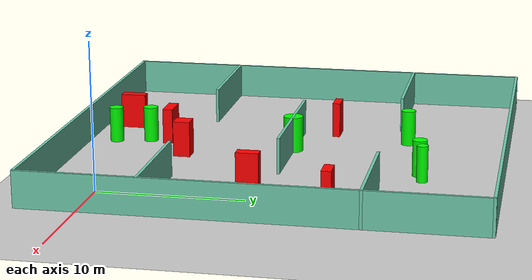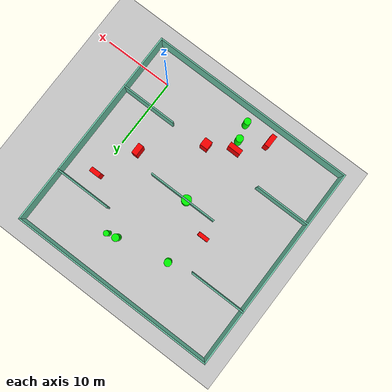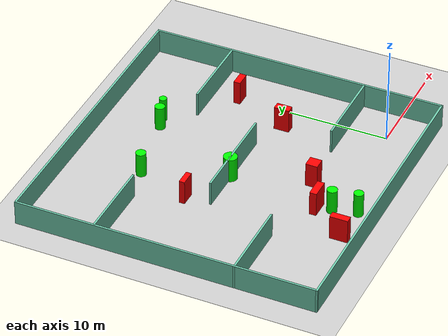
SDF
<sdf version="1.7">
 <world name="default">
  <light name="sun" type="directional">
   <pose>0 0 10 0 -0 0</pose>
   <diffuse>0.8 0.8 0.8 1</diffuse>
   <specular>0.2 0.2 0.2 1</specular>
   <attenuation>
    <range>1000</range>
    <constant>0.9</constant>
    <linear>0.01</linear>
    <quadratic>0.001</quadratic>
   </attenuation>
   <direction>-0.5 0.1 -0.9</direction>
   <spot><inner_angle>0</inner_angle><outer_angle>0</outer_angle><falloff>0</falloff></spot>
  </light>
  <model name="ground_plane">
   <static>1</static>
   <link name="link">
    <collision name="collision">
     <geometry><plane><normal>0 0 1</normal><size>100 100</size></plane></geometry>
     <surface>
      <contact><collide_bitmask>65535</collide_bitmask></contact>
      <friction><ode><mu>100</mu><mu2>50</mu2></ode></friction>
     </surface>
    </collision>
    <visual name="visual">
     <cast_shadows>0</cast_shadows>
     <geometry><plane><normal>0 0 1</normal><size>100 100</size></plane></geometry>
     <material>
      <script><uri>file://media/materials/scripts/gazebo.material</uri><name>Gazebo/Grey</name></script>
     </material>
    </visual>
   </link>
  </model>
  <gravity>0 0 -9.8</gravity>
  <magnetic_field>6e-06 2.3e-05 -4.2e-05</magnetic_field>
  <atmosphere type="adiabatic"/>
  <physics type="ode">
   <max_step_size>0.001</max_step_size>
   <real_time_factor>1</real_time_factor>
   <real_time_update_rate>1000</real_time_update_rate>
  </physics>
  <scene><ambient>0.4 0.4 0.4 1</ambient><background>0.7 0.7 0.7 1</background><shadows>1</shadows></scene>
  <spherical_coordinates>
   <surface_model>EARTH_WGS84</surface_model>
   <latitude_deg>0</latitude_deg>
   <longitude_deg>0</longitude_deg>
   <elevation>0</elevation>
   <heading_deg>0</heading_deg>
  </spherical_coordinates>
  <model name="my_base_walls">
   <link name="Wall_10">
    <collision name="Wall_10_Collision">
     <geometry><box><size>8.2 0.2 2.5</size></box></geometry>
     <pose>0 0 1.25 0 -0 0</pose>
    </collision>
    <visual name="Wall_10_Visual">
     <pose>0 0 1.25 0 -0 0</pose>
     <geometry><box><size>8.2 0.2 2.5</size></box></geometry>
     <material>
      <script><uri>file://media/materials/scripts/gazebo.material</uri><name>Gazebo/Grey</name></script>
      <ambient>0.435294 0.796078 0.67451 1</ambient>
     </material>
     <meta><layer>0</layer></meta>
    </visual>
    <pose>-11 -7 0 0 -0 0</pose>
   </link>
   <link name="Wall_12">
    <collision name="Wall_12_Collision">
     <geometry><box><size>8.2 0.2 2.5</size></box></geometry>
     <pose>0 0 1.25 0 -0 0</pose>
    </collision>
    <visual name="Wall_12_Visual">
     <pose>0 0 1.25 0 -0 0</pose>
     <geometry><box><size>8.2 0.2 2.5</size></box></geometry>
     <material>
      <script><uri>file://media/materials/scripts/gazebo.material</uri><name>Gazebo/Grey</name></script>
      <ambient>0.435294 0.796078 0.67451 1</ambient>
     </material>
     <meta><layer>0</layer></meta>
    </visual>
    <pose>-11 7 0 0 -0 0</pose>
   </link>
   <link name="Wall_14">
    <collision name="Wall_14_Collision">
     <geometry><box><size>8.2 0.2 2.5</size></box></geometry>
     <pose>0 0 1.25 0 -0 0</pose>
    </collision>
    <visual name="Wall_14_Visual">
     <pose>0 0 1.25 0 -0 0</pose>
     <geometry><box><size>8.2 0.2 2.5</size></box></geometry>
     <material>
      <script><uri>file://media/materials/scripts/gazebo.material</uri><name>Gazebo/Grey</name></script>
      <ambient>0.435294 0.796078 0.67451 1</ambient>
     </material>
     <meta><layer>0</layer></meta>
    </visual>
    <pose>11 7 0 0 -0 3.14159</pose>
   </link>
   <link name="Wall_16">
    <collision name="Wall_16_Collision">
     <geometry><box><size>10.2 0.2 2.5</size></box></geometry>
     <pose>0 0 1.25 0 -0 0</pose>
    </collision>
    <visual name="Wall_16_Visual">
     <pose>0 0 1.25 0 -0 0</pose>
     <geometry><box><size>10.2 0.2 2.5</size></box></geometry>
     <material>
      <script><uri>file://media/materials/scripts/gazebo.material</uri><name>Gazebo/Grey</name></script>
      <ambient>0.435294 0.796078 0.67451 1</ambient>
     </material>
     <meta><layer>0</layer></meta>
    </visual>
    <pose>0 0 0 0 -0 3.14159</pose>
   </link>
   <link name="Wall_2">
    <collision name="Wall_2_Collision">
     <geometry><box><size>30.2 0.2 2.5</size></box></geometry>
     <pose>0 0 1.25 0 -0 0</pose>
    </collision>
    <visual name="Wall_2_Visual">
     <pose>0 0 1.25 0 -0 0</pose>
     <geometry><box><size>30.2 0.2 2.5</size></box></geometry>
     <material>
      <script><uri>file://media/materials/scripts/gazebo.material</uri><name>Gazebo/Grey</name></script>
      <ambient>0.435294 0.796078 0.67451 1</ambient>
     </material>
     <meta><layer>0</layer></meta>
    </visual>
    <pose>0 -15 0 0 -0 3.14159</pose>
   </link>
   <link name="Wall_3">
    <collision name="Wall_3_Collision">
     <geometry><box><size>30.2 0.2 2.5</size></box></geometry>
     <pose>0 0 1.25 0 -0 0</pose>
    </collision>
    <visual name="Wall_3_Visual">
     <pose>0 0 1.25 0 -0 0</pose>
     <geometry><box><size>30.2 0.2 2.5</size></box></geometry>
     <material>
      <script><uri>file://media/materials/scripts/gazebo.material</uri><name>Gazebo/Grey</name></script>
      <ambient>0.435294 0.796078 0.67451 1</ambient>
     </material>
     <meta><layer>0</layer></meta>
    </visual>
    <pose>-15 0 0 0 -0 1.5708</pose>
   </link>
   <link name="Wall_4">
    <collision name="Wall_4_Collision">
     <geometry><box><size>30.2 0.2 2.5</size></box></geometry>
     <pose>0 0 1.25 0 -0 0</pose>
    </collision>
    <visual name="Wall_4_Visual">
     <pose>0 0 1.25 0 -0 0</pose>
     <geometry><box><size>30.2 0.2 2.5</size></box></geometry>
     <material>
      <script><uri>file://media/materials/scripts/gazebo.material</uri><name>Gazebo/Grey</name></script>
      <ambient>0.435294 0.796078 0.67451 1</ambient>
     </material>
     <meta><layer>0</layer></meta>
    </visual>
    <pose>0 15 0 0 -0 0</pose>
   </link>
   <link name="Wall_6">
    <collision name="Wall_6_Collision">
     <geometry><box><size>30.2 0.2 2.5</size></box></geometry>
     <pose>0 0 1.25 0 -0 0</pose>
    </collision>
    <visual name="Wall_6_Visual">
     <pose>0 0 1.25 0 -0 0</pose>
     <geometry><box><size>30.2 0.2 2.5</size></box></geometry>
     <material>
      <script><uri>file://media/materials/scripts/gazebo.material</uri><name>Gazebo/Grey</name></script>
      <ambient>0.435294 0.796078 0.67451 1</ambient>
     </material>
     <meta><layer>0</layer></meta>
    </visual>
    <pose>15 0 0 0 -0 1.5708</pose>
   </link>
   <link name="Wall_8">
    <collision name="Wall_8_Collision">
     <geometry><box><size>8.2 0.2 2.5</size></box></geometry>
     <pose>0 0 1.25 0 -0 0</pose>
    </collision>
    <visual name="Wall_8_Visual">
     <pose>0 0 1.25 0 -0 0</pose>
     <geometry><box><size>8.2 0.2 2.5</size></box></geometry>
     <material>
      <script><uri>file://media/materials/scripts/gazebo.material</uri><name>Gazebo/Grey</name></script>
      <ambient>0.435294 0.796078 0.67451 1</ambient>
     </material>
     <meta><layer>0</layer></meta>
    </visual>
    <pose>11 -7 0 0 -0 3.14159</pose>
   </link>
   <static>1</static>
   <pose>-11 11 0 0 -0 0</pose>
  </model>
  <model name="cylinder1">
   <static>1</static>
   <link name="link">
    <inertial>
     <mass>1</mass>
     <inertia><ixx>0.5</ixx><ixy>0</ixy><ixz>0</ixz><iyy>0.5</iyy><iyz>0</iyz><izz>1</izz></inertia>
    </inertial>
    <collision name="collision">
     <geometry><cylinder><radius>0.6889097244091923</radius><length>2.5</length></cylinder></geometry>
    </collision>
    <visual name="visual">
     <geometry><cylinder><radius>0.6889097244091923</radius><length>2.5</length></cylinder></geometry>
     <material>
      <ambient>0 1 0 1</ambient>
      <diffuse>0 1 0 1</diffuse>
      <specular>0.1 0.1 0.1 1</specular>
      <emissive>0 0 0 0</emissive>
     </material>
    </visual>
   </link>
   <pose>-11.631687273938137 10.99701923122347 1.25 0 0 0</pose>
  </model>
  <model name="cylinder2">
   <static>1</static>
   <link name="link">
    <inertial>
     <mass>1</mass>
     <inertia><ixx>0.5</ixx><ixy>0</ixy><ixz>0</ixz><iyy>0.5</iyy><iyz>0</iyz><izz>1</izz></inertia>
    </inertial>
    <collision name="collision">
     <geometry><cylinder><radius>0.4846495321639922</radius><length>2.5</length></cylinder></geometry>
    </collision>
    <visual name="visual">
     <geometry><cylinder><radius>0.4846495321639922</radius><length>2.5</length></cylinder></geometry>
     <material>
      <ambient>0 1 0 1</ambient>
      <diffuse>0 1 0 1</diffuse>
      <specular>0.1 0.1 0.1 1</specular>
      <emissive>0 0 0 0</emissive>
     </material>
    </visual>
   </link>
   <pose>-11.725596595911885 -2.017278852582888 1.25 0 0 0</pose>
  </model>
  <model name="cylinder3">
   <static>1</static>
   <link name="link">
    <inertial>
     <mass>1</mass>
     <inertia><ixx>0.5</ixx><ixy>0</ixy><ixz>0</ixz><iyy>0.5</iyy><iyz>0</iyz><izz>1</izz></inertia>
    </inertial>
    <collision name="collision">
     <geometry><cylinder><radius>0.5126581244849414</radius><length>2.5</length></cylinder></geometry>
    </collision>
    <visual name="visual">
     <geometry><cylinder><radius>0.5126581244849414</radius><length>2.5</length></cylinder></geometry>
     <material>
      <ambient>0 1 0 1</ambient>
      <diffuse>0 1 0 1</diffuse>
      <specular>0.1 0.1 0.1 1</specular>
      <emissive>0 0 0 0</emissive>
     </material>
    </visual>
   </link>
   <pose>-12.264247284895323 0.3996706609646874 1.25 0 0 0</pose>
  </model>
  <model name="cylinder4">
   <static>1</static>
   <link name="link">
    <inertial>
     <mass>1</mass>
     <inertia><ixx>0.5</ixx><ixy>0</ixy><ixz>0</ixz><iyy>0.5</iyy><iyz>0</iyz><izz>1</izz></inertia>
    </inertial>
    <collision name="collision">
     <geometry><cylinder><radius>0.5079026999217136</radius><length>2.5</length></cylinder></geometry>
    </collision>
    <visual name="visual">
     <geometry><cylinder><radius>0.5079026999217136</radius><length>2.5</length></cylinder></geometry>
     <material>
      <ambient>0 1 0 1</ambient>
      <diffuse>0 1 0 1</diffuse>
      <specular>0.1 0.1 0.1 1</specular>
      <emissive>0 0 0 0</emissive>
     </material>
    </visual>
   </link>
   <pose>-7.3258951920733555 20.4021986589838 1.25 0 0 0</pose>
  </model>
  <model name="cylinder5">
   <static>1</static>
   <link name="link">
    <inertial>
     <mass>1</mass>
     <inertia><ixx>0.5</ixx><ixy>0</ixy><ixz>0</ixz><iyy>0.5</iyy><iyz>0</iyz><izz>1</izz></inertia>
    </inertial>
    <collision name="collision">
     <geometry><cylinder><radius>0.5100237198486436</radius><length>2.5</length></cylinder></geometry>
    </collision>
    <visual name="visual">
     <geometry><cylinder><radius>0.5100237198486436</radius><length>2.5</length></cylinder></geometry>
     <material>
      <ambient>0 1 0 1</ambient>
      <diffuse>0 1 0 1</diffuse>
      <specular>0.1 0.1 0.1 1</specular>
      <emissive>0 0 0 0</emissive>
     </material>
    </visual>
   </link>
   <pose>-14.61614299912783 18.842568800669063 1.25 0 0 0</pose>
  </model>
  <model name="cylinder6">
   <static>1</static>
   <link name="link">
    <inertial>
     <mass>1</mass>
     <inertia><ixx>0.5</ixx><ixy>0</ixy><ixz>0</ixz><iyy>0.5</iyy><iyz>0</iyz><izz>1</izz></inertia>
    </inertial>
    <collision name="collision">
     <geometry><cylinder><radius>0.38382637709619893</radius><length>2.5</length></cylinder></geometry>
    </collision>
    <visual name="visual">
     <geometry><cylinder><radius>0.38382637709619893</radius><length>2.5</length></cylinder></geometry>
     <material>
      <ambient>0 1 0 1</ambient>
      <diffuse>0 1 0 1</diffuse>
      <specular>0.1 0.1 0.1 1</specular>
      <emissive>0 0 0 0</emissive>
     </material>
    </visual>
   </link>
   <pose>-6.041283460990751 20.694038166737965 1.25 0 0 0</pose>
  </model>
  <model name="box1">
   <static>1</static>
   <link name="link">
    <inertial>
     <mass>1</mass>
     <inertia><ixx>0.083</ixx><ixy>0</ixy><ixz>0</ixz><iyy>0.083</iyy><iyz>0</iyz><izz>0.083</izz></inertia>
    </inertial>
    <collision name="collision">
     <geometry><box><size>1.4821165299970636 0.6684119994321288 2.5</size></box></geometry>
    </collision>
    <visual name="visual">
     <geometry><box><size>1.4821165299970636 0.6684119994321288 2.5</size></box></geometry>
     <material>
      <ambient>1 0 0 1</ambient>
      <diffuse>1 0 0 1</diffuse>
      <specular>0.1 0.1 0.1 1</specular>
      <emissive>0 0 0 0</emissive>
     </material>
    </visual>
    <sensor name="my_contact" type="contact">
     <contact><collision>box_collision</collision><topic>__default_topic__</topic></contact>
    </sensor>
   </link>
   <pose>-0.028726678597550404 15.32244728742618 1.25 0 0 0</pose>
  </model>
  <model name="box2">
   <static>1</static>
   <link name="link">
    <inertial>
     <mass>1</mass>
     <inertia><ixx>0.083</ixx><ixy>0</ixy><ixz>0</ixz><iyy>0.083</iyy><iyz>0</iyz><izz>0.083</izz></inertia>
    </inertial>
    <collision name="collision">
     <geometry><box><size>1.8909416810387514 0.7014299119320505 2.5</size></box></geometry>
    </collision>
    <visual name="visual">
     <geometry><box><size>1.8909416810387514 0.7014299119320505 2.5</size></box></geometry>
     <material>
      <ambient>1 0 0 1</ambient>
      <diffuse>1 0 0 1</diffuse>
      <specular>0.1 0.1 0.1 1</specular>
      <emissive>0 0 0 0</emissive>
     </material>
    </visual>
    <sensor name="my_contact" type="contact">
     <contact><collision>box_collision</collision><topic>__default_topic__</topic></contact>
    </sensor>
   </link>
   <pose>-12.61073296595421 1.7809732078156637 1.25 0 0 0</pose>
  </model>
  <model name="box3">
   <static>1</static>
   <link name="link">
    <inertial>
     <mass>1</mass>
     <inertia><ixx>0.083</ixx><ixy>0</ixy><ixz>0</ixz><iyy>0.083</iyy><iyz>0</iyz><izz>0.083</izz></inertia>
    </inertial>
    <collision name="collision">
     <geometry><box><size>0.7270908881886934 1.806791011134689 2.5</size></box></geometry>
    </collision>
    <visual name="visual">
     <geometry><box><size>0.7270908881886934 1.806791011134689 2.5</size></box></geometry>
     <material>
      <ambient>1 0 0 1</ambient>
      <diffuse>1 0 0 1</diffuse>
      <specular>0.1 0.1 0.1 1</specular>
      <emissive>0 0 0 0</emissive>
     </material>
    </visual>
    <sensor name="my_contact" type="contact">
     <contact><collision>box_collision</collision><topic>__default_topic__</topic></contact>
    </sensor>
   </link>
   <pose>-15.656460339444443 -1.8195728343167032 1.25 0 0 0</pose>
  </model>
  <model name="box4">
   <static>1</static>
   <link name="link">
    <inertial>
     <mass>1</mass>
     <inertia><ixx>0.083</ixx><ixy>0</ixy><ixz>0</ixz><iyy>0.083</iyy><iyz>0</iyz><izz>0.083</izz></inertia>
    </inertial>
    <collision name="collision">
     <geometry><box><size>0.7877798142398527 1.5448538856857215 2.5</size></box></geometry>
    </collision>
    <visual name="visual">
     <geometry><box><size>0.7877798142398527 1.5448538856857215 2.5</size></box></geometry>
     <material>
      <ambient>1 0 0 1</ambient>
      <diffuse>1 0 0 1</diffuse>
      <specular>0.1 0.1 0.1 1</specular>
      <emissive>0 0 0 0</emissive>
     </material>
    </visual>
    <sensor name="my_contact" type="contact">
     <contact><collision>box_collision</collision><topic>__default_topic__</topic></contact>
    </sensor>
   </link>
   <pose>-2.5585968832938804 9.64453407003499 1.25 0 0 0</pose>
  </model>
  <model name="box5">
   <static>1</static>
   <link name="link">
    <inertial>
     <mass>1</mass>
     <inertia><ixx>0.083</ixx><ixy>0</ixy><ixz>0</ixz><iyy>0.083</iyy><iyz>0</iyz><izz>0.083</izz></inertia>
    </inertial>
    <collision name="collision">
     <geometry><box><size>1.149352942023543 1.1855330130388329 2.5</size></box></geometry>
    </collision>
    <visual name="visual">
     <geometry><box><size>1.149352942023543 1.1855330130388329 2.5</size></box></geometry>
     <material>
      <ambient>1 0 0 1</ambient>
      <diffuse>1 0 0 1</diffuse>
      <specular>0.1 0.1 0.1 1</specular>
      <emissive>0 0 0 0</emissive>
     </material>
    </visual>
    <sensor name="my_contact" type="contact">
     <contact><collision>box_collision</collision><topic>__default_topic__</topic></contact>
    </sensor>
   </link>
   <pose>-9.201297001587267 3.5803749946986168 1.25 0 0 0</pose>
  </model>
  <model name="box6">
   <static>1</static>
   <link name="link">
    <inertial>
     <mass>1</mass>
     <inertia><ixx>0.083</ixx><ixy>0</ixy><ixz>0</ixz><iyy>0.083</iyy><iyz>0</iyz><izz>0.083</izz></inertia>
    </inertial>
    <collision name="collision">
     <geometry><box><size>1.5406297816895553 0.5418998899004317 2.5</size></box></geometry>
    </collision>
    <visual name="visual">
     <geometry><box><size>1.5406297816895553 0.5418998899004317 2.5</size></box></geometry>
     <material>
      <ambient>1 0 0 1</ambient>
      <diffuse>1 0 0 1</diffuse>
      <specular>0.1 0.1 0.1 1</specular>
      <emissive>0 0 0 0</emissive>
     </material>
    </visual>
    <sensor name="my_contact" type="contact">
     <contact><collision>box_collision</collision><topic>__default_topic__</topic></contact>
    </sensor>
   </link>
   <pose>-16.265880621236462 13.45722070740807 1.25 0 0 0</pose>
  </model>
 </world>
</sdf>
